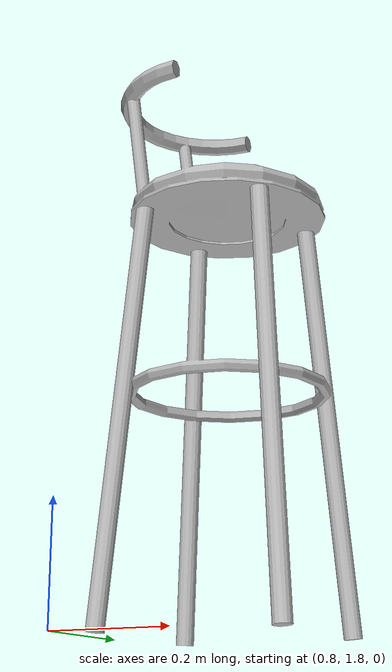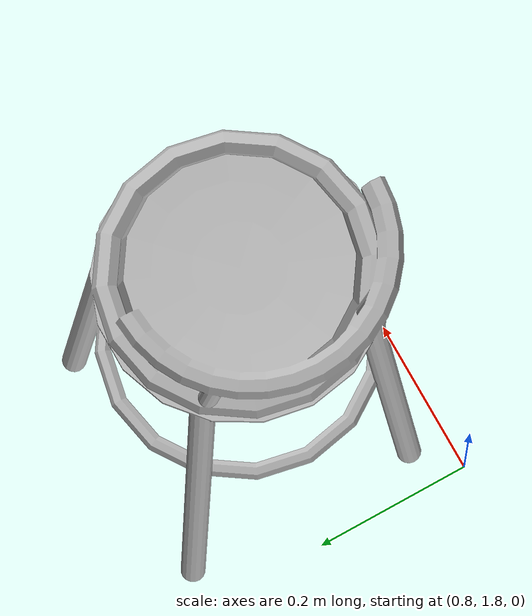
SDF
<?xml version="1.0" ?>
<sdf version="1.6">
  <model name="my_chair">
    <!-- If you want it immovable, change to 'true' -->
    <pose>1.0 2.0 0 1.57 0 1.57</pose>
    <static>false</static>

    <link name="chair_link">
      <!-- Inertial properties (basic example) -->
      <inertial>
        <mass>1.0</mass>
        <inertia>
          <ixx>1.0</ixx>
          <ixy>0.0</ixy>
          <ixz>0.0</ixz>
          <iyy>1.0</iyy>
          <iyz>0.0</iyz>
          <izz>1.0</izz>
        </inertia>
      </inertial>

      <!-- Visual representation of the chair -->
      <visual name="chair_visual">
        <geometry>
          <mesh>
            <uri>model://my_chair/meshes/high_chair.stl</uri>
            <!-- Adjust scale if needed -->
            <scale>0.01 0.01 0.01</scale>
          </mesh>
        </geometry>
      </visual>

      <!-- Collision: use a simplified box for performance -->
      <collision name="chair_collision">
        <geometry>
          <mesh>
            <uri>model://my_chair/meshes/high_chair.stl</uri>
            <!-- Adjust scale if needed -->
            <scale>0.01 0.01 0.01</scale>
          </mesh>
        </geometry>
      </collision>
    </link>
  </model>
</sdf>
